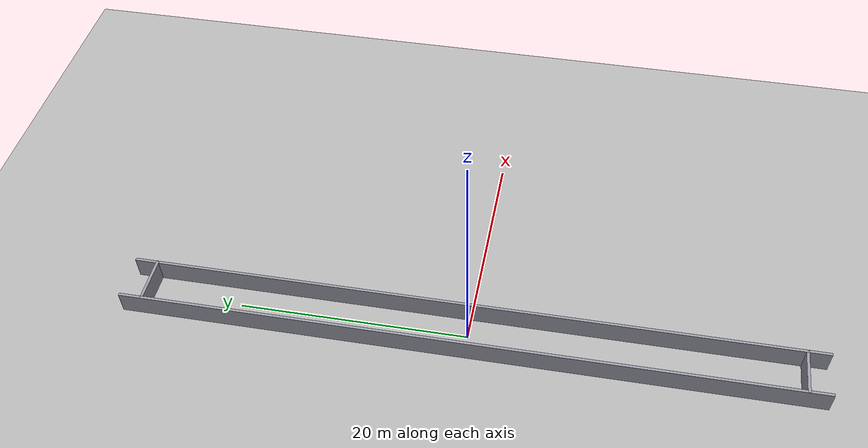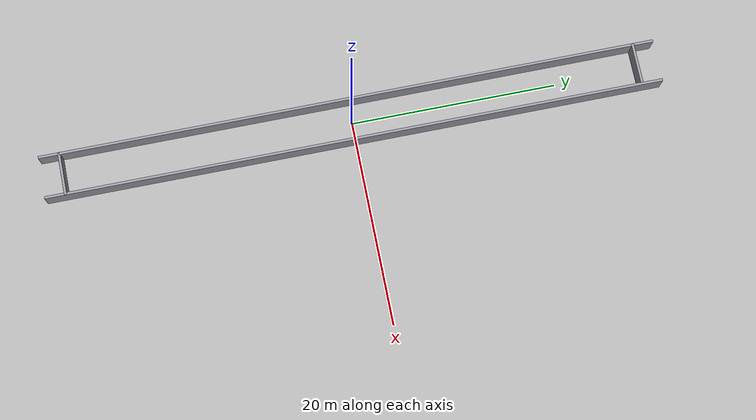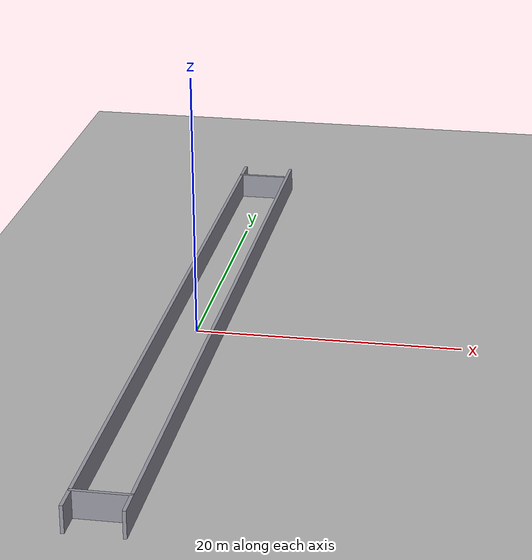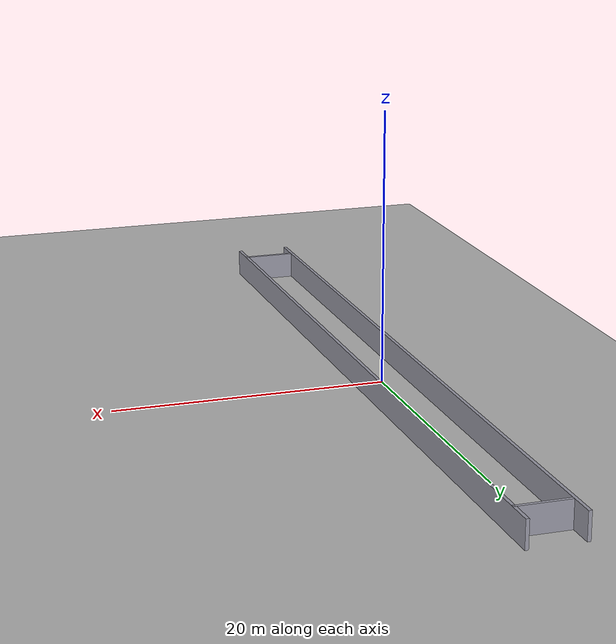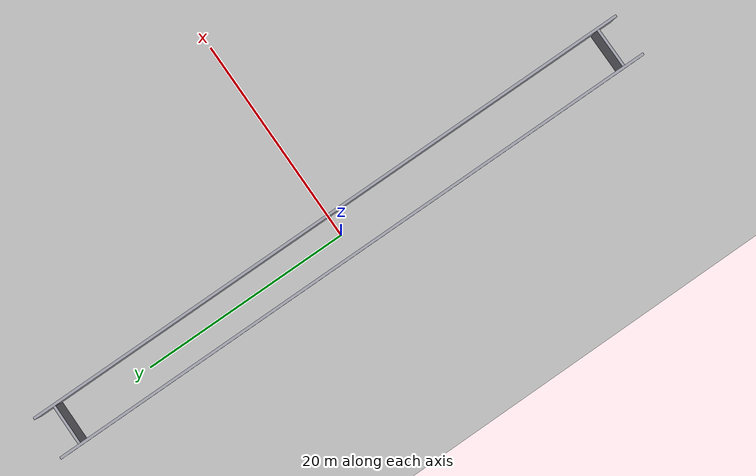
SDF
<?xml version="1.0"?>
<sdf version="1.8">
  <world name="long_corridor_world">
    <plugin filename="gz-sim-physics-system" name="gz::sim::systems::Physics"/>
    <plugin filename="gz-sim-sensors-system" name="gz::sim::systems::Sensors">
      <render_engine>ogre2</render_engine>
    </plugin>
    <plugin filename="gz-sim-scene-broadcaster-system" name="gz::sim::systems::SceneBroadcaster"/>
    <plugin filename="gz-sim-user-commands-system" name="gz::sim::systems::UserCommands"/>

    <light name="sun" type="directional">
      <pose>0 0 10 0 0 0</pose>
      <diffuse>0.8 0.8 0.8 1</diffuse>
      <specular>0.2 0.2 0.2 1</specular>
      <attenuation>
        <range>1000</range>
        <constant>0.9</constant>
        <linear>0.01</linear>
        <quadratic>0.001</quadratic>
      </attenuation>
      <direction>-0.5 0.1 -0.9</direction>
    </light>

    <!-- Ground plane -->
    <model name="ground_plane">
      <static>true</static>
      <link name="link">
        <collision name="collision">
          <geometry>
            <plane>
              <normal>0 0 1</normal>
              <size>100 100</size>
            </plane>
          </geometry>
        </collision>
        <visual name="visual">
          <geometry>
            <plane>
              <normal>0 0 1</normal>
              <size>100 100</size>
            </plane>
          </geometry>
          <material>
            <ambient>0.7 0.7 0.7 1</ambient>
            <diffuse>0.7 0.7 0.7 1</diffuse>
          </material>
        </visual>
      </link>
    </model>

    <!-- Corridor walls -->
    <model name="wall_left">
      <static>true</static>
      <pose>2 0 1 0 0 0</pose>
      <link name="link">
        <collision name="collision">
          <geometry>
            <box>
              <size>0.25 60 2</size>
            </box>
          </geometry>
        </collision>
        <visual name="visual">
          <geometry>
            <box>
              <size>0.25 60 2</size>
            </box>
          </geometry>
          <material>
            <ambient>0.6 0.6 0.65 1</ambient>
            <diffuse>0.6 0.6 0.65 1</diffuse>
          </material>
        </visual>
      </link>
    </model>

    <model name="wall_right">
      <static>true</static>
      <pose>-2 0 1 0 0 0</pose>
      <link name="link">
        <collision name="collision">
          <geometry>
            <box>
              <size>0.25 60 2</size>
            </box>
          </geometry>
        </collision>
        <visual name="visual">
          <geometry>
            <box>
              <size>0.25 60 2</size>
            </box>
          </geometry>
          <material>
            <ambient>0.6 0.6 0.65 1</ambient>
            <diffuse>0.6 0.6 0.65 1</diffuse>
          </material>
        </visual>
      </link>
    </model>

    <!-- Start wall with doorway -->
    <model name="wall_start">
      <static>true</static>
      <pose>0 -28 1 0 0 0</pose>
      <link name="link">
        <collision name="collision">
          <geometry>
            <box>
              <size>4.2 0.25 2</size>
            </box>
          </geometry>
        </collision>
        <visual name="visual">
          <geometry>
            <box>
              <size>4.2 0.25 2</size>
            </box>
          </geometry>
          <material>
            <ambient>0.6 0.6 0.65 1</ambient>
            <diffuse>0.6 0.6 0.65 1</diffuse>
          </material>
        </visual>
        <collision name="doorway_collision">
          <geometry>
            <box>
              <size>1.2 0.3 1.8</size>
            </box>
          </geometry>
          <pose>0 0 -1 0 0 0</pose>
        </collision>
      </link>
    </model>

    <!-- End wall with doorway -->
    <model name="wall_end">
      <static>true</static>
      <pose>0 28 1 0 0 0</pose>
      <link name="link">
        <collision name="collision">
          <geometry>
            <box>
              <size>4.2 0.25 2</size>
            </box>
          </geometry>
        </collision>
        <visual name="visual">
          <geometry>
            <box>
              <size>4.2 0.25 2</size>
            </box>
          </geometry>
          <material>
            <ambient>0.6 0.6 0.65 1</ambient>
            <diffuse>0.6 0.6 0.65 1</diffuse>
          </material>
        </visual>
        <collision name="doorway_collision">
          <geometry>
            <box>
              <size>1.2 0.3 1.8</size>
            </box>
          </geometry>
          <pose>0 0 -1 0 0 0</pose>
                </collision>

      </link>
    </model>
  </world>
</sdf>
